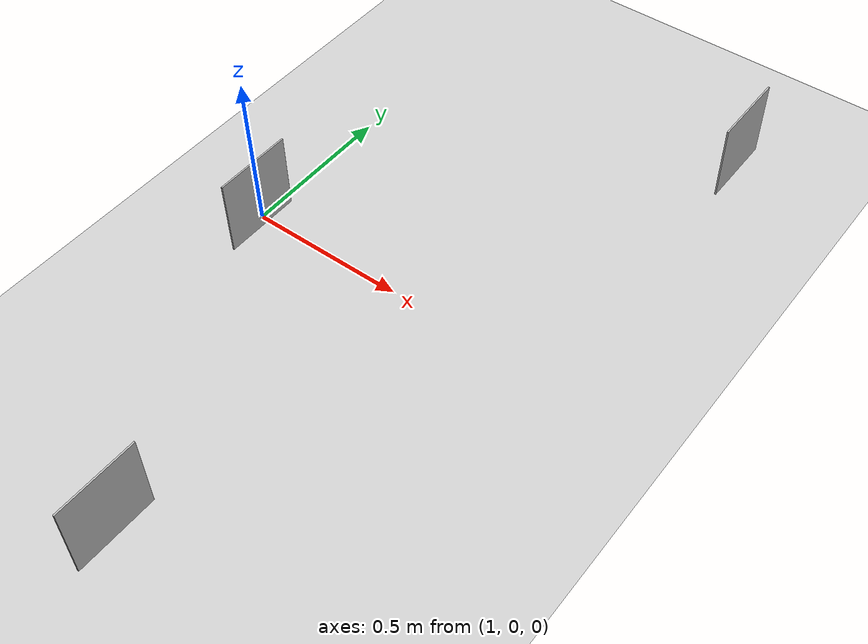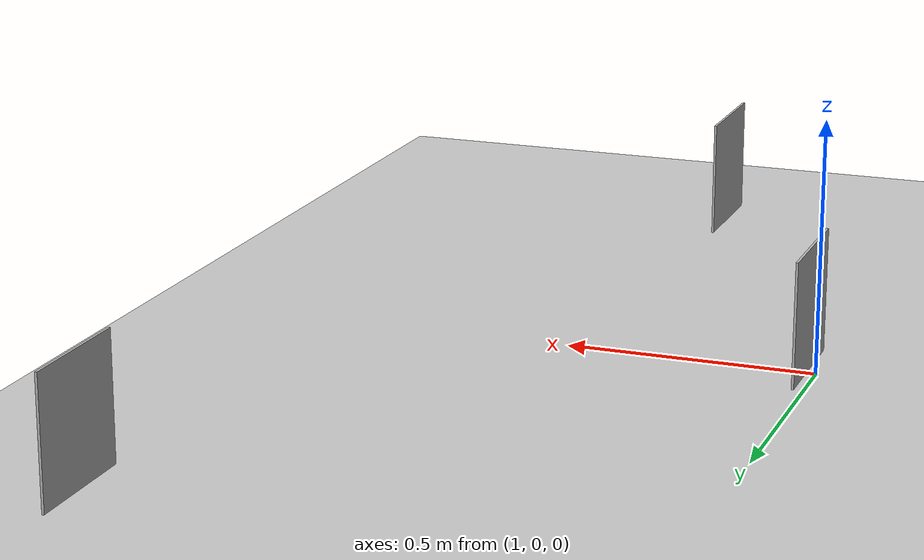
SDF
<sdf version="1.6">
 <world name="default">
  <scene><ambient>0.4 0.4 0.4 1</ambient><background>0.7 0.7 0.7 1</background><shadows>1</shadows></scene>
  <light name="sun" type="directional">
   <pose>0 0 10 0 -0 0</pose>
   <diffuse>0.8 0.8 0.8 1</diffuse>
   <specular>0.1 0.1 0.1 1</specular>
   <attenuation>
    <range>1000</range>
    <constant>0.9</constant>
    <linear>0.01</linear>
    <quadratic>0.001</quadratic>
   </attenuation>
   <direction>-0.5 0.5 -1</direction>
  </light>
  <model name="ground_plane">
   <static>1</static>
   <link name="link">
    <collision name="collision">
     <geometry><plane><normal>0 0 1</normal><size>100 100</size></plane></geometry>
     <surface><friction><ode><mu>100</mu><mu2>50</mu2></ode></friction></surface>
    </collision>
    <visual name="visual">
     <cast_shadows>0</cast_shadows>
     <geometry><plane><normal>0 0 1</normal><size>100 100</size></plane></geometry>
     <material>
      <script><uri>file://media/materials/scripts/gazebo.material</uri><name>Gazebo/Grey</name></script>
     </material>
    </visual>
   </link>
  </model>
  <physics name="default_physics" default="0" type="ode">
   <real_time_update_rate>1000</real_time_update_rate>
   <max_step_size>0.001</max_step_size>
   <real_time_factor>1</real_time_factor>
   <ode>
    <solver>
     <type>quick</type>
     <iters>150</iters>
     <precon_iters>0</precon_iters>
     <sor>1.4</sor>
     <use_dynamic_moi_rescaling>1</use_dynamic_moi_rescaling>
    </solver>
    <constraints>
     <cfm>1e-05</cfm>
     <erp>0.2</erp>
     <contact_max_correcting_vel>2000</contact_max_correcting_vel>
     <contact_surface_layer>0.01</contact_surface_layer>
    </constraints>
   </ode>
  </physics>
  <gravity>0 0 -9.8</gravity>
  <magnetic_field>6e-06 2.3e-05 -4.2e-05</magnetic_field>
  <atmosphere type="adiabatic"/>
  <spherical_coordinates>
   <surface_model>EARTH_WGS84</surface_model>
   <latitude_deg>0</latitude_deg>
   <longitude_deg>0</longitude_deg>
   <elevation>0</elevation>
   <heading_deg>0</heading_deg>
  </spherical_coordinates>
  <model name="Marker0">
   <static>1</static>
   <link name="link">
    <visual name="visual">
     <geometry><mesh><uri>model://marker0/meshes/Marker0.dae</uri><scale>0.5 0.5 0.5</scale></mesh></geometry>
    </visual>
   </link>
   <pose>1.02238 -0.024073 0 0 -0 0</pose>
  </model>
  <model name="Marker1">
   <static>1</static>
   <link name="link">
    <visual name="visual">
     <geometry><mesh><uri>model://marker1/meshes/Marker1.dae</uri><scale>0.5 0.5 0.5</scale></mesh></geometry>
    </visual>
   </link>
   <pose>2.03386 1.01693 0 0 -0 0</pose>
  </model>
  <model name="Marker14">
   <static>1</static>
   <link name="link">
    <visual name="visual">
     <geometry><mesh><uri>model://marker14/meshes/Marker14.dae</uri><scale>0.5 0.5 0.5</scale></mesh></geometry>
    </visual>
   </link>
   <pose>1.44952 -1.0147 0 0 -0 0</pose>
  </model>
 </world>
</sdf>
